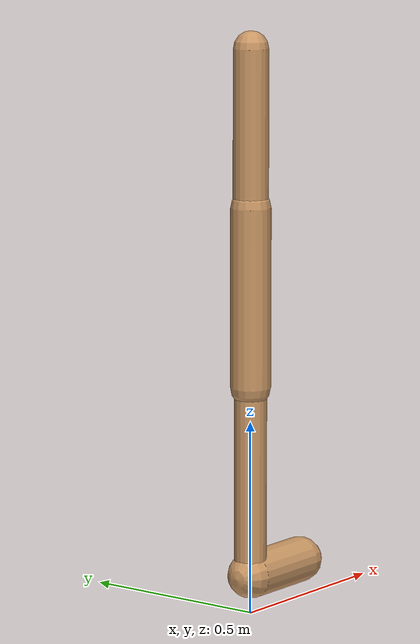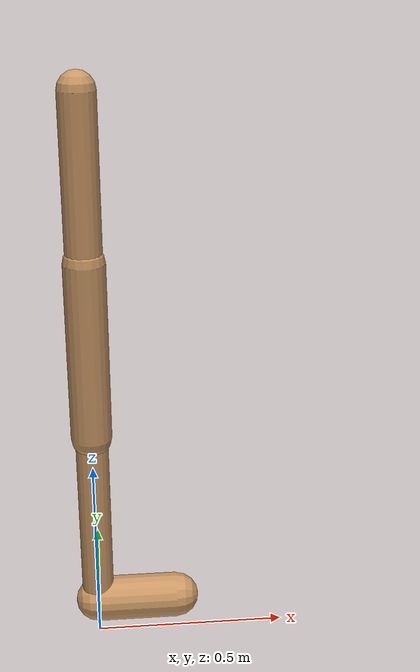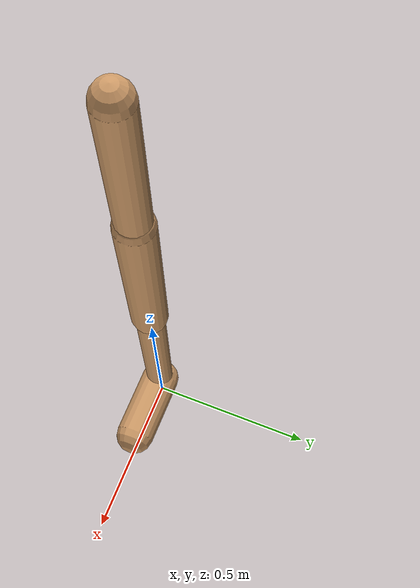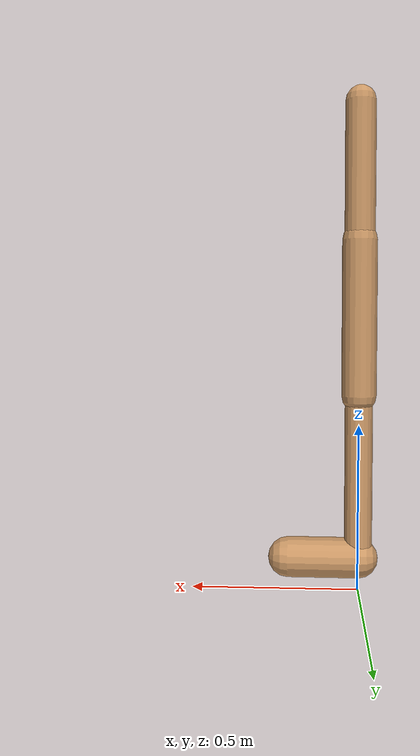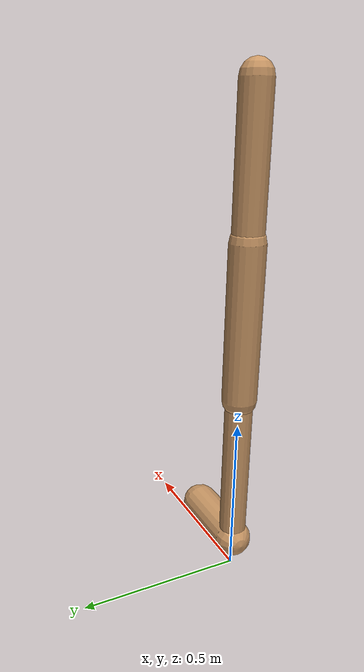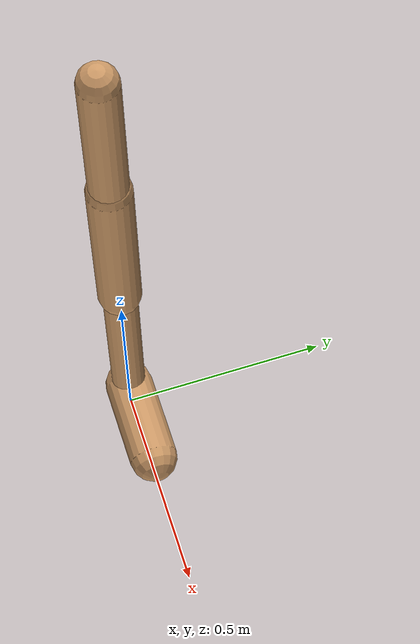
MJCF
<mujoco model="walker2d">
  <compiler angle="degree" coordinate="global" inertiafromgeom="true" />
  <default>
    <joint armature="0.01" damping=".1" limited="true" />
    <geom conaffinity="0" condim="3" contype="1" density="1000" friction="0.8 .1 .1" rgba="0.8 0.6 .4 1" />
  </default>
  <option integrator="RK4" timestep="0.002" />
  <worldbody>

    <body name="torso" pos="0 0 0.02067510917506516">
      <joint armature="0" axis="1 0 0" damping="0" limited="false" name="ignorex" pos="0 0 0" stiffness="0" type="slide" />
      <joint armature="0" axis="0 0 1" damping="0" limited="false" name="ignorez" pos="0 0 0" ref="1.25" stiffness="0" type="slide" />
      <joint armature="0" axis="0 1 0" damping="0" limited="false" name="ignorey" pos="0 0 0" stiffness="0" type="hinge" />
      <geom fromto="0 0 1.45 0 0 1.05" name="torso_geom" size="0.04502384153456498" type="capsule" />
      <body name="thigh">
        <joint axis="0 -1 0" name="thigh_joint" pos="0 0 1.05" range="-150 0" type="hinge" />
        <geom fromto="0.0 0.0 1.05 0.0 0.0 0.5902065272328638" name="thigh_geom" size="0.05169336396389536" type="capsule" />
        <body name="leg" pos="0.0 0.0 -0.009793472767136158">
          <joint axis="0 -1 0" name="leg_joint" pos="0 0 0.6" range="-150 0" type="hinge" />
          <geom fromto="0.0 0.0 0.6 0.0 0.0 0.08911836359207098" name="leg_geom" size="0.04135469117111629" type="capsule" />
          <body name="foot" pos="0.0 0.0 -0.010881636407929024">
            <joint axis="0 -1 0" name="foot_joint" pos="0 0 0.1" range="-45 45" type="hinge" />
            <geom fromto="-0.0 0.0 0.1 0.210657313318366 0.0 0.1" name="foot_geom" size="0.0590955804418068" type="capsule" />
          </body>
        </body>
      </body>

      <body name="thigh_left">
        <joint axis="0 -1 0" name="thigh_left_joint" pos="0 0 1.05" range="-150 0" type="hinge" />
        <geom fromto="0.0 0.0 1.05 0.0 0.0 0.5902065272328638" name="thigh_left_geom" rgba=".7 .3 .6 1" size="0.05169336396389536" type="capsule" />
        <body name="leg_left" pos="0.0 0.0 -0.009793472767136158">
          <joint axis="0 -1 0" name="leg_left_joint" pos="0 0 0.6" range="-150 0" type="hinge" />
          <geom fromto="0.0 0.0 0.6 0.0 0.0 0.08911836359207098" name="leg_left_geom" rgba=".7 .3 .6 1" size="0.04135469117111629" type="capsule" />
          <body name="foot_left" pos="0.0 0.0 -0.010881636407929024">
            <joint axis="0 -1 0" name="foot_left_joint" pos="0 0 0.1" range="-45 45" type="hinge" />
            <geom fromto="-0.0 0.0 0.1 0.210657313318366 0.0 0.1" name="foot_left_geom" rgba=".7 .3 .6 1" size="0.0590955804418068" type="capsule" />
          </body>
        </body>
      </body>
    </body>
  </worldbody>
  <actuator>

    <motor ctrllimited="true" ctrlrange="-1.0 1.0" gear="100" joint="thigh_joint" />
    <motor ctrllimited="true" ctrlrange="-1.0 1.0" gear="100" joint="leg_joint" />
    <motor ctrllimited="true" ctrlrange="-1.0 1.0" gear="100" joint="foot_joint" />
    <motor ctrllimited="true" ctrlrange="-1.0 1.0" gear="100" joint="thigh_left_joint" />
    <motor ctrllimited="true" ctrlrange="-1.0 1.0" gear="100" joint="leg_left_joint" />
    <motor ctrllimited="true" ctrlrange="-1.0 1.0" gear="100" joint="foot_left_joint" />

  </actuator>
</mujoco>
